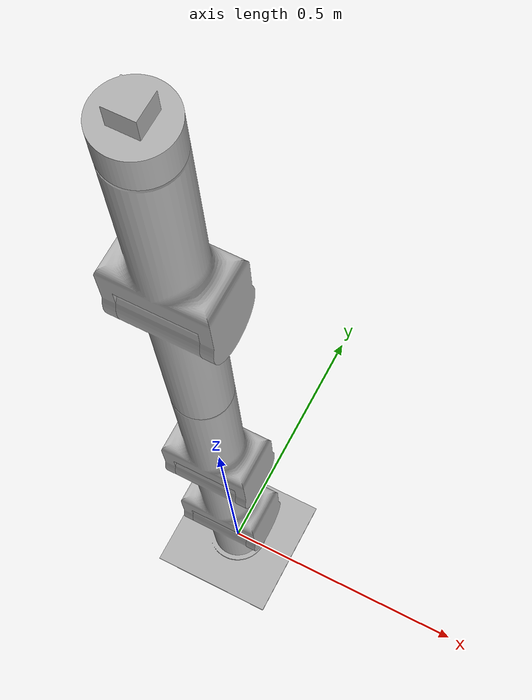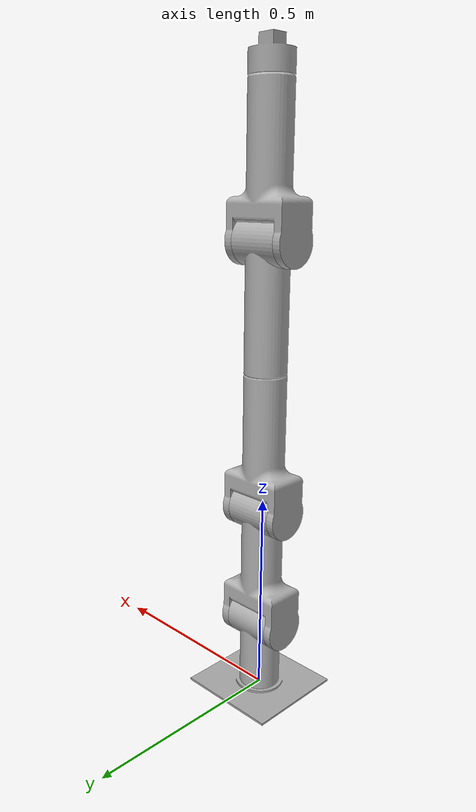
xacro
<?xml version="1.0" ?>
<robot name="ostrich_urdf" xmlns:xacro="http://www.ros.org/wiki/xacro">

<xacro:include filename="$(find ostrich_urdf_description)/urdf/materials.xacro" />
<xacro:include filename="$(find ostrich_urdf_description)/urdf/ostrich_urdf.trans" />
<xacro:include filename="$(find ostrich_urdf_description)/urdf/ostrich_urdf.gazebo" />
<link name="base_link">
  <inertial>
    <origin xyz="2.7578935128829445e-17 5.515787025765889e-17 0.002761975022526879" rpy="0 0 0"/>
    <mass value="2.5887632628187394"/>
    <inertia ixx="0.012992" iyy="0.012992" izz="0.025967" ixy="0.0" iyz="0.0" ixz="-0.0"/>
  </inertial>
  <visual>
    <origin xyz="0 0 0" rpy="0 0 0"/>
    <geometry>
      <mesh filename="package://ostrich_urdf_description/meshes/base_link.stl" scale="0.001 0.001 0.001"/>
    </geometry>
    <material name="silver"/>
  </visual>
  <collision>
    <origin xyz="0 0 0" rpy="0 0 0"/>
    <geometry>
      <mesh filename="package://ostrich_urdf_description/meshes/base_link.stl" scale="0.001 0.001 0.001"/>
    </geometry>
  </collision>
</link>

<link name="arm1_1">
  <inertial>
    <origin xyz="0.0 -7.328670674595108e-10 0.12579457405148342" rpy="0 0 0"/>
    <mass value="17.06120317992324"/>
    <inertia ixx="0.086124" iyy="0.089734" izz="0.02783" ixy="0.0" iyz="-0.0" ixz="0.0"/>
  </inertial>
  <visual>
    <origin xyz="-0.0 -0.0 -0.005" rpy="0 0 0"/>
    <geometry>
      <mesh filename="package://ostrich_urdf_description/meshes/arm1_1.stl" scale="0.001 0.001 0.001"/>
    </geometry>
    <material name="silver"/>
  </visual>
  <collision>
    <origin xyz="-0.0 -0.0 -0.005" rpy="0 0 0"/>
    <geometry>
      <mesh filename="package://ostrich_urdf_description/meshes/arm1_1.stl" scale="0.001 0.001 0.001"/>
    </geometry>
  </collision>
</link>

<link name="arm2_1">
  <inertial>
    <origin xyz="-0.05999999999732328 3.032800993368656e-08 0.17138913427023483" rpy="0 0 0"/>
    <mass value="27.17363423214535"/>
    <inertia ixx="0.332477" iyy="0.355819" izz="0.064159" ixy="0.0" iyz="-0.0" ixz="0.0"/>
  </inertial>
  <visual>
    <origin xyz="-0.06 -0.0 -0.185" rpy="0 0 0"/>
    <geometry>
      <mesh filename="package://ostrich_urdf_description/meshes/arm2_1.stl" scale="0.001 0.001 0.001"/>
    </geometry>
    <material name="silver"/>
  </visual>
  <collision>
    <origin xyz="-0.06 -0.0 -0.185" rpy="0 0 0"/>
    <geometry>
      <mesh filename="package://ostrich_urdf_description/meshes/arm2_1.stl" scale="0.001 0.001 0.001"/>
    </geometry>
  </collision>
</link>

<link name="arm3_1">
  <inertial>
    <origin xyz="-0.0599999999957338 4.493635609449077e-10 0.1518601041469002" rpy="0 0 0"/>
    <mass value="23.646526866373804"/>
    <inertia ixx="0.256501" iyy="0.276234" izz="0.053214" ixy="0.0" iyz="0.0" ixz="-0.0"/>
  </inertial>
  <visual>
    <origin xyz="-0.06 -0.0 -0.48" rpy="0 0 0"/>
    <geometry>
      <mesh filename="package://ostrich_urdf_description/meshes/arm3_1.stl" scale="0.001 0.001 0.001"/>
    </geometry>
    <material name="silver"/>
  </visual>
  <collision>
    <origin xyz="-0.06 -0.0 -0.48" rpy="0 0 0"/>
    <geometry>
      <mesh filename="package://ostrich_urdf_description/meshes/arm3_1.stl" scale="0.001 0.001 0.001"/>
    </geometry>
  </collision>
</link>

<link name="arm4_1">
  <inertial>
    <origin xyz="0.0 -1.0276776143111988e-09 0.18482539606118964" rpy="0 0 0"/>
    <mass value="24.429919386960766"/>
    <inertia ixx="0.27668" iyy="0.28029" izz="0.037009" ixy="-0.0" iyz="0.0" ixz="0.0"/>
  </inertial>
  <visual>
    <origin xyz="-0.0 -0.0 -0.815" rpy="0 0 0"/>
    <geometry>
      <mesh filename="package://ostrich_urdf_description/meshes/arm4_1.stl" scale="0.001 0.001 0.001"/>
    </geometry>
    <material name="silver"/>
  </visual>
  <collision>
    <origin xyz="-0.0 -0.0 -0.815" rpy="0 0 0"/>
    <geometry>
      <mesh filename="package://ostrich_urdf_description/meshes/arm4_1.stl" scale="0.001 0.001 0.001"/>
    </geometry>
  </collision>
</link>

<link name="arm5_1">
  <inertial>
    <origin xyz="-0.0599999999957338 4.493635609449077e-10 0.15186010414690032" rpy="0 0 0"/>
    <mass value="23.646526866373804"/>
    <inertia ixx="0.256501" iyy="0.276234" izz="0.053214" ixy="0.0" iyz="0.0" ixz="-0.0"/>
  </inertial>
  <visual>
    <origin xyz="-0.06 -0.0 -1.11" rpy="0 0 0"/>
    <geometry>
      <mesh filename="package://ostrich_urdf_description/meshes/arm5_1.stl" scale="0.001 0.001 0.001"/>
    </geometry>
    <material name="silver"/>
  </visual>
  <collision>
    <origin xyz="-0.06 -0.0 -1.11" rpy="0 0 0"/>
    <geometry>
      <mesh filename="package://ostrich_urdf_description/meshes/arm5_1.stl" scale="0.001 0.001 0.001"/>
    </geometry>
  </collision>
</link>

<link name="arm6_1">
  <inertial>
    <origin xyz="-1.0318772372603758e-17 0.0 0.02935671431989184" rpy="0 0 0"/>
    <mass value="3.459487791334984"/>
    <inertia ixx="0.003185" iyy="0.003185" izz="0.003954" ixy="0.0" iyz="-0.0" ixz="-0.0"/>
  </inertial>
  <visual>
    <origin xyz="-0.0 -0.0 -1.445" rpy="0 0 0"/>
    <geometry>
      <mesh filename="package://ostrich_urdf_description/meshes/arm6_1.stl" scale="0.001 0.001 0.001"/>
    </geometry>
    <material name="silver"/>
  </visual>
  <collision>
    <origin xyz="-0.0 -0.0 -1.445" rpy="0 0 0"/>
    <geometry>
      <mesh filename="package://ostrich_urdf_description/meshes/arm6_1.stl" scale="0.001 0.001 0.001"/>
    </geometry>
  </collision>
</link>

<joint name="rot1" type="continuous">
  <origin xyz="0.0 0.0 0.005" rpy="0 0 0"/>
  <parent link="base_link"/>
  <child link="arm1_1"/>
  <axis xyz="0.0 0.0 1.0"/>
</joint>

<joint name="rot2" type="continuous">
  <origin xyz="0.06 0.0 0.18" rpy="0 0 0"/>
  <parent link="arm1_1"/>
  <child link="arm2_1"/>
  <axis xyz="1.0 0.0 0.0"/>
</joint>

<joint name="rot3" type="continuous">
  <origin xyz="0.0 0.0 0.295" rpy="0 0 0"/>
  <parent link="arm2_1"/>
  <child link="arm3_1"/>
  <axis xyz="-1.0 0.0 0.0"/>
</joint>

<joint name="rot4" type="continuous">
  <origin xyz="-0.06 0.0 0.335" rpy="0 0 0"/>
  <parent link="arm3_1"/>
  <child link="arm4_1"/>
  <axis xyz="0.0 0.0 -1.0"/>
</joint>

<joint name="rot5" type="continuous">
  <origin xyz="0.06 0.0 0.295" rpy="0 0 0"/>
  <parent link="arm4_1"/>
  <child link="arm5_1"/>
  <axis xyz="1.0 0.0 0.0"/>
</joint>

<joint name="rot6" type="continuous">
  <origin xyz="-0.06 0.0 0.335" rpy="0 0 0"/>
  <parent link="arm5_1"/>
  <child link="arm6_1"/>
  <axis xyz="0.0 0.0 -1.0"/>
</joint>

</robot>

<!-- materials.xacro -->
<robot name="ostrich_urdf" xmlns:xacro="http://www.ros.org/wiki/xacro" >

<material name="silver">
  <color rgba="0.700 0.700 0.700 1.000"/>
</material>

</robot>

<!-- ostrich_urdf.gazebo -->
<robot name="ostrich_urdf" xmlns:xacro="http://www.ros.org/wiki/xacro" >

<xacro:property name="body_color" value="Gazebo/Silver" />

<gazebo>
  <plugin name="control" filename="libgazebo_ros_control.so"/>
</gazebo>
<gazebo reference="base_link">
  <material>${body_color}</material>
  <mu1>0.2</mu1>
  <mu2>0.2</mu2>
  <selfCollide>true</selfCollide>
  <gravity>true</gravity>
</gazebo>

<gazebo reference="arm1_1">
  <material>${body_color}</material>
  <mu1>0.2</mu1>
  <mu2>0.2</mu2>
  <selfCollide>true</selfCollide>
</gazebo>

<gazebo reference="arm2_1">
  <material>${body_color}</material>
  <mu1>0.2</mu1>
  <mu2>0.2</mu2>
  <selfCollide>true</selfCollide>
</gazebo>

<gazebo reference="arm3_1">
  <material>${body_color}</material>
  <mu1>0.2</mu1>
  <mu2>0.2</mu2>
  <selfCollide>true</selfCollide>
</gazebo>

<gazebo reference="arm4_1">
  <material>${body_color}</material>
  <mu1>0.2</mu1>
  <mu2>0.2</mu2>
  <selfCollide>true</selfCollide>
</gazebo>

<gazebo reference="arm5_1">
  <material>${body_color}</material>
  <mu1>0.2</mu1>
  <mu2>0.2</mu2>
  <selfCollide>true</selfCollide>
</gazebo>

<gazebo reference="arm6_1">
  <material>${body_color}</material>
  <mu1>0.2</mu1>
  <mu2>0.2</mu2>
  <selfCollide>true</selfCollide>
</gazebo>

</robot>
